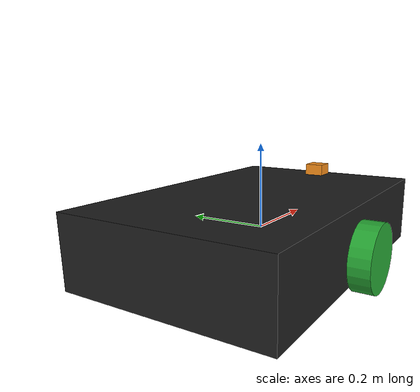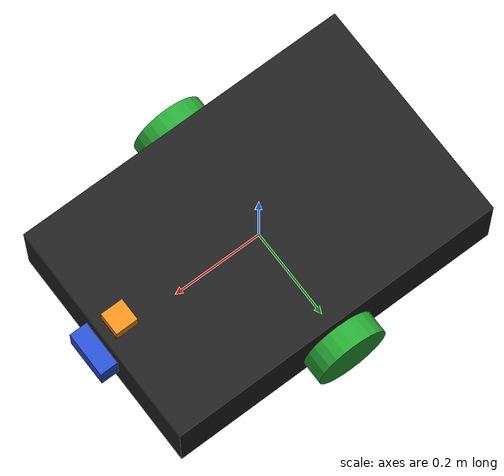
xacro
<?xml version="1.0"?>
<robot name="my_first_robot" xmlns:xacro="http://www.ros.org/wiki/xacro">

    <xacro:include filename="$(find my_first_robot)/urdf/my_robot.gazebo"/>

    <link name="base_link" />

    <joint name="base_link_to_chassis" type="fixed">
    <parent link="base_link"/>
    <child link="chassis"/>
    </joint>

    <link name="chassis">
        <inertial>
        <mass value="1"/>
        <origin xyz="0.0 0 0.09" rpy=" 0 0 0"/>
        <inertia
            ixx="0.1" ixy="0" ixz="0"
            iyy="0.1" iyz="0"
            izz="0.1"
        />
        </inertial>
        <visual name = 'chassis_visual'>
            <origin xyz="0.0 0 0" rpy=" 0 0 0"/>
            <geometry>
                <box size=" 0.75 0.5 0.17"/>
            </geometry>
        </visual>
        <collision name = 'chassis_collision'>
            <origin xyz="0.0 0 0" rpy=" 0 0 0"/>
            <geometry>
                <box size="0.77 0.52 0.19"/>
            </geometry>
        </collision>
    </link>

    <link name="right_wheel">
        <visual>
            <geometry>
                <cylinder radius="0.08" length="0.05"/>
            </geometry>
            <origin rpy="1.57075 0.0 0.0" xyz="0.0 0 0"/>
        </visual>
        <collision>
        <origin rpy="1.57075 0.0 0.0" xyz="0.0 0 0"/>
            <geometry>
                <cylinder radius="0.08" length="0.05"/>
            </geometry>
        </collision>

        <inertial>
        <mass value="0.5"/>
        <origin xyz="0.0 0 0" rpy=" 1.5707 0 0"/>
        <inertia
            ixx="0.1" ixy="0" ixz="0"
            iyy="0.1" iyz="0"
            izz="0.1"
        />
        </inertial>
    </link>

    <joint name="chassis_to_right_wheel" type="continuous">
        <origin rpy="0 0.0 0.0" xyz="0.0 -0.275 -0.03"/>
        <parent link="chassis"/>
        <child link="right_wheel"/>
        <axis xyz="0.0 -1 0.0"/>
        <limit  effort="10000" velocity="1000"/>
    </joint>

    <link name="left_wheel">
        <visual>
            <geometry>
                <cylinder radius="0.08" length="0.05"/>
            </geometry>
            <origin rpy="1.57075 0.0 0.0" xyz="0.0 0 0"/>
        </visual>
        <collision>
        <origin rpy="1.57075 0.0 0.0" xyz="0.0 0 0"/>
            <geometry>
                <cylinder radius="0.08" length="0.05"/>
            </geometry>
        </collision>

        <inertial>
        <mass value="0.5"/>
        <origin xyz="0.0 0 0" rpy=" 1.5707 0 0"/>
        <inertia
            ixx="0.1" ixy="0" ixz="0"
            iyy="0.1" iyz="0"
            izz="0.1"
        />
        </inertial>
    </link>

    <joint name="chassis_to_left_wheel" type="continuous">
        <origin rpy="0 0.0 0.0" xyz="0.0 0.275 -0.03"/>
        <parent link="chassis"/>
        <child link="left_wheel"/>
        <axis xyz="0 1 0.0"/>
        <limit  effort="10000" velocity="1000"/>
    </joint>

    <link name="lidar">
        <visual>
            <geometry>
                <box size="0.05 0.05 0.05"/>
            </geometry>
            <origin rpy="0.0 0.0 0.0" xyz="0.0 0 0"/>
        </visual>
        <collision>
        <origin rpy="0.0 0.0 0.0" xyz="0.0 0 0"/>
            <geometry>
                <box size="0.05 0.05 0.05"/>
            </geometry>
        </collision>

        <inertial>
        <mass value="0.2"/>
        <origin xyz="0.0 0 0" rpy=" 0 0 0"/>
        <inertia
            ixx="0.1" ixy="0" ixz="0"
            iyy="0.1" iyz="0"
            izz="0.1"
        />
        </inertial>
    </link>

    <joint name="chassis_to_lidar" type="fixed">
        <origin rpy="0 0.0 0.0" xyz="0.33 0.0 0.09"/>
        <parent link="chassis"/>
        <child link="lidar"/>
    </joint>

    <link name="camera">
        <visual>
            <geometry>
                <box size="0.04 0.1 .06"/>
            </geometry>
            <origin rpy="0.0 0.0 0.0" xyz="0.0 0 0"/>
        </visual>
        <collision>
        <origin rpy="0.0 0.0 0.0" xyz="0.0 0 0"/>
            <geometry>
                <box size="0.04 0.1 0.06"/>
            </geometry>
        </collision>

        <inertial>
        <mass value="0.1"/>
        <origin xyz="0.0 0 0" rpy=" 0 0 0"/>
        <inertia
            ixx="0.1" ixy="0" ixz="0"
            iyy="0.1" iyz="0"
            izz="0.1"
        />
        </inertial>
    </link>

    <joint name="camera_to_lidar" type="fixed">
        <origin rpy="0 0.0 0.0" xyz="0.395 0.0 0"/>
        <parent link="chassis"/>
        <child link="camera"/>
    </joint>

</robot>
